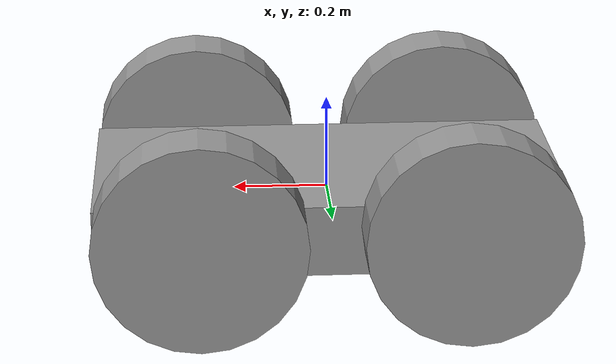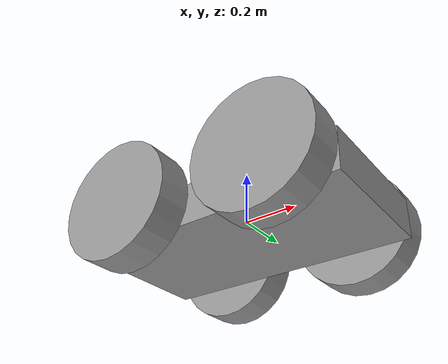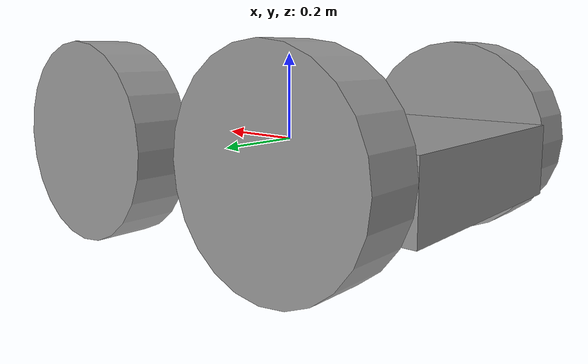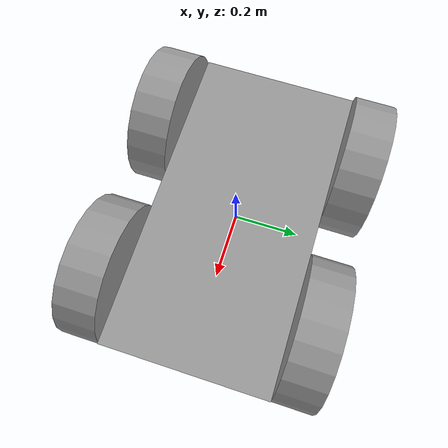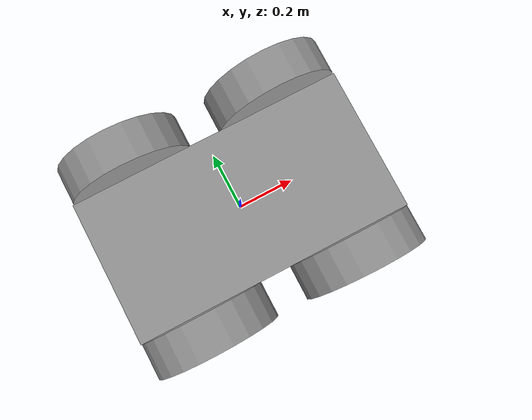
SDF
<?xml version='1.0'?>
<sdf version='1.6'>
  <model name='wheeled_robot'>
    <link name='link_0'>
      <pose frame=''>-0 -0 -0.025902 0 -0 0</pose>
      <inertial>
        <mass>0.0772446</mass>
        <inertia>
          <ixx>0.00185631</ixx>
          <ixy>0</ixy>
          <ixz>0</ixz>
          <iyy>0.00652801</iyy>
          <iyz>0</iyz>
          <izz>0.00809275</izz>
        </inertia>
        <pose frame=''>0 0 0 0 -0 0</pose>
      </inertial>
      <visual name='visual'>
        <pose frame=''>0 0 0 0 -0 0</pose>
        <geometry>
          <box>
            <size>0.995732 0.515491 0.150489</size>
          </box>
        </geometry>
        <material>
          <lighting>1</lighting>
          <script>
            <uri>file://media/materials/scripts/gazebo.material</uri>
            <name>Gazebo/Grey</name>
          </script>
          <shader type='pixel'/>
          <ambient>0.3 0.3 0.3 1</ambient>
          <diffuse>0.7 0.7 0.7 1</diffuse>
          <specular>0.01 0.01 0.01 1</specular>
          <emissive>0 0 0 1</emissive>
        </material>
        <transparency>0</transparency>
        <cast_shadows>1</cast_shadows>
      </visual>
      <collision name='collision'>
        <laser_retro>0</laser_retro>
        <max_contacts>10</max_contacts>
        <pose frame=''>0 0 0 0 -0 0</pose>
        <geometry>
          <box>
            <size>0.995732 0.515491 0.150489</size>
          </box>
        </geometry>
        <surface>
          <friction>
            <ode>
              <mu>1</mu>
              <mu2>1</mu2>
              <fdir1>0 0 0</fdir1>
              <slip1>0</slip1>
              <slip2>0</slip2>
            </ode>
            <torsional>
              <coefficient>1</coefficient>
              <patch_radius>0</patch_radius>
              <surface_radius>0</surface_radius>
              <use_patch_radius>1</use_patch_radius>
              <ode>
                <slip>0</slip>
              </ode>
            </torsional>
          </friction>
          <bounce>
            <restitution_coefficient>0</restitution_coefficient>
            <threshold>1e+06</threshold>
          </bounce>
          <contact>
            <collide_without_contact>0</collide_without_contact>
            <collide_without_contact_bitmask>1</collide_without_contact_bitmask>
            <collide_bitmask>1</collide_bitmask>
            <ode>
              <soft_cfm>0</soft_cfm>
              <soft_erp>0.2</soft_erp>
              <kp>1e+13</kp>
              <kd>1</kd>
              <max_vel>0.01</max_vel>
              <min_depth>0</min_depth>
            </ode>
            <bullet>
              <split_impulse>1</split_impulse>
              <split_impulse_penetration_threshold>-0.01</split_impulse_penetration_threshold>
              <soft_cfm>0</soft_cfm>
              <soft_erp>0.2</soft_erp>
              <kp>1e+13</kp>
              <kd>1</kd>
            </bullet>
          </contact>
        </surface>
      </collision>
    </link>
    <link name='link_1'>
      <pose frame=''>0.276969 -0.320255 0.006476 1.5708 -0 0</pose>
      <inertial>
        <mass>0.0244029</mass>
        <inertia>
          <ixx>0.00032947</ixx>
          <ixy>0</ixy>
          <ixz>0</ixz>
          <iyy>0.00032947</iyy>
          <iyz>0</iyz>
          <izz>0.00059538</izz>
        </inertia>
        <pose frame=''>0 0 0 0 -0 0</pose>
      </inertial>
      <gravity>1</gravity>
      <self_collide>0</self_collide>
      <kinematic>0</kinematic>
      <visual name='visual'>
        <pose frame=''>0 0 0 0 -0 0</pose>
        <geometry>
          <cylinder>
            <radius>0.220898</radius>
            <length>0.125017</length>
          </cylinder>
        </geometry>
        <material>
          <lighting>1</lighting>
          <script>
            <uri>file://media/materials/scripts/gazebo.material</uri>
            <name>Gazebo/Grey</name>
          </script>
          <shader type='pixel'>
            <normal_map>__default__</normal_map>
          </shader>
          <ambient>0.3 0.3 0.3 1</ambient>
          <diffuse>0.7 0.7 0.7 1</diffuse>
          <specular>0.01 0.01 0.01 1</specular>
          <emissive>0 0 0 1</emissive>
        </material>
        <transparency>0</transparency>
        <cast_shadows>1</cast_shadows>
      </visual>
      <collision name='collision'>
        <laser_retro>0</laser_retro>
        <max_contacts>10</max_contacts>
        <pose frame=''>0 0 0 0 -0 0</pose>
        <geometry>
          <cylinder>
            <radius>0.220898</radius>
            <length>0.125017</length>
          </cylinder>
        </geometry>
        <surface>
          <friction>
            <ode>
              <mu>1</mu>
              <mu2>1</mu2>
              <fdir1>0 0 0</fdir1>
              <slip1>0</slip1>
              <slip2>0</slip2>
            </ode>
            <torsional>
              <coefficient>1</coefficient>
              <patch_radius>0</patch_radius>
              <surface_radius>0</surface_radius>
              <use_patch_radius>1</use_patch_radius>
              <ode>
                <slip>0</slip>
              </ode>
            </torsional>
          </friction>
          <bounce>
            <restitution_coefficient>0</restitution_coefficient>
            <threshold>1e+06</threshold>
          </bounce>
          <contact>
            <collide_without_contact>0</collide_without_contact>
            <collide_without_contact_bitmask>1</collide_without_contact_bitmask>
            <collide_bitmask>1</collide_bitmask>
            <ode>
              <soft_cfm>0</soft_cfm>
              <soft_erp>0.2</soft_erp>
              <kp>1e+13</kp>
              <kd>1</kd>
              <max_vel>0.01</max_vel>
              <min_depth>0</min_depth>
            </ode>
            <bullet>
              <split_impulse>1</split_impulse>
              <split_impulse_penetration_threshold>-0.01</split_impulse_penetration_threshold>
              <soft_cfm>0</soft_cfm>
              <soft_erp>0.2</soft_erp>
              <kp>1e+13</kp>
              <kd>1</kd>
            </bullet>
          </contact>
        </surface>
      </collision>
    </link>
    <link name='link_1_clone'>
      <pose frame=''>-0.276969 -0.320255 0.006475 1.5708 -0 0</pose>
      <inertial>
        <mass>0.0244029</mass>
        <inertia>
          <ixx>0.00032947</ixx>
          <ixy>0</ixy>
          <ixz>0</ixz>
          <iyy>0.00032947</iyy>
          <iyz>0</iyz>
          <izz>0.00059538</izz>
        </inertia>
        <pose frame=''>0 0 0 0 -0 0</pose>
      </inertial>
      <self_collide>0</self_collide>
      <kinematic>0</kinematic>
      <visual name='visual'>
        <pose frame=''>0 0 0 0 -0 0</pose>
        <geometry>
          <cylinder>
            <radius>0.220898</radius>
            <length>0.125017</length>
          </cylinder>
        </geometry>
        <material>
          <lighting>1</lighting>
          <script>
            <uri>file://media/materials/scripts/gazebo.material</uri>
            <name>Gazebo/Grey</name>
          </script>
          <shader type='pixel'>
            <normal_map>__default__</normal_map>
          </shader>
          <ambient>0.3 0.3 0.3 1</ambient>
          <diffuse>0.7 0.7 0.7 1</diffuse>
          <specular>0.01 0.01 0.01 1</specular>
          <emissive>0 0 0 1</emissive>
        </material>
        <transparency>0</transparency>
        <cast_shadows>1</cast_shadows>
      </visual>
      <collision name='collision'>
        <laser_retro>0</laser_retro>
        <max_contacts>10</max_contacts>
        <pose frame=''>0 0 0 0 -0 0</pose>
        <geometry>
          <cylinder>
            <radius>0.220898</radius>
            <length>0.125017</length>
          </cylinder>
        </geometry>
        <surface>
          <friction>
            <ode>
              <mu>1</mu>
              <mu2>1</mu2>
              <fdir1>0 0 0</fdir1>
              <slip1>0</slip1>
              <slip2>0</slip2>
            </ode>
            <torsional>
              <coefficient>1</coefficient>
              <patch_radius>0</patch_radius>
              <surface_radius>0</surface_radius>
              <use_patch_radius>1</use_patch_radius>
              <ode>
                <slip>0</slip>
              </ode>
            </torsional>
          </friction>
          <bounce>
            <restitution_coefficient>0</restitution_coefficient>
            <threshold>1e+06</threshold>
          </bounce>
          <contact>
            <collide_without_contact>0</collide_without_contact>
            <collide_without_contact_bitmask>1</collide_without_contact_bitmask>
            <collide_bitmask>1</collide_bitmask>
            <ode>
              <soft_cfm>0</soft_cfm>
              <soft_erp>0.2</soft_erp>
              <kp>1e+13</kp>
              <kd>1</kd>
              <max_vel>0.01</max_vel>
              <min_depth>0</min_depth>
            </ode>
            <bullet>
              <split_impulse>1</split_impulse>
              <split_impulse_penetration_threshold>-0.01</split_impulse_penetration_threshold>
              <soft_cfm>0</soft_cfm>
              <soft_erp>0.2</soft_erp>
              <kp>1e+13</kp>
              <kd>1</kd>
            </bullet>
          </contact>
        </surface>
      </collision>
    </link>
    <link name='link_1_clone_0'>
      <pose frame=''>0.276969 0.320255 0.006476 1.5708 -0 0</pose>
      <inertial>
        <mass>0.0244029</mass>
        <inertia>
          <ixx>0.00032947</ixx>
          <ixy>0</ixy>
          <ixz>0</ixz>
          <iyy>0.00032947</iyy>
          <iyz>0</iyz>
          <izz>0.00059538</izz>
        </inertia>
        <pose frame=''>0 0 0 0 -0 0</pose>
      </inertial>
      <self_collide>0</self_collide>
      <kinematic>0</kinematic>
      <visual name='visual'>
        <pose frame=''>0 0 0 0 -0 0</pose>
        <geometry>
          <cylinder>
            <radius>0.220898</radius>
            <length>0.125017</length>
          </cylinder>
        </geometry>
        <material>
          <lighting>1</lighting>
          <script>
            <uri>file://media/materials/scripts/gazebo.material</uri>
            <name>Gazebo/Grey</name>
          </script>
          <shader type='pixel'>
            <normal_map>__default__</normal_map>
          </shader>
          <ambient>0.3 0.3 0.3 1</ambient>
          <diffuse>0.7 0.7 0.7 1</diffuse>
          <specular>0.01 0.01 0.01 1</specular>
          <emissive>0 0 0 1</emissive>
        </material>
        <transparency>0</transparency>
        <cast_shadows>1</cast_shadows>
      </visual>
      <collision name='collision'>
        <laser_retro>0</laser_retro>
        <max_contacts>10</max_contacts>
        <pose frame=''>0 0 0 0 -0 0</pose>
        <geometry>
          <cylinder>
            <radius>0.220898</radius>
            <length>0.125017</length>
          </cylinder>
        </geometry>
        <surface>
          <friction>
            <ode>
              <mu>1</mu>
              <mu2>1</mu2>
              <fdir1>0 0 0</fdir1>
              <slip1>0</slip1>
              <slip2>0</slip2>
            </ode>
            <torsional>
              <coefficient>1</coefficient>
              <patch_radius>0</patch_radius>
              <surface_radius>0</surface_radius>
              <use_patch_radius>1</use_patch_radius>
              <ode>
                <slip>0</slip>
              </ode>
            </torsional>
          </friction>
          <bounce>
            <restitution_coefficient>0</restitution_coefficient>
            <threshold>1e+06</threshold>
          </bounce>
          <contact>
            <collide_without_contact>0</collide_without_contact>
            <collide_without_contact_bitmask>1</collide_without_contact_bitmask>
            <collide_bitmask>1</collide_bitmask>
            <ode>
              <soft_cfm>0</soft_cfm>
              <soft_erp>0.2</soft_erp>
              <kp>1e+13</kp>
              <kd>1</kd>
              <max_vel>0.01</max_vel>
              <min_depth>0</min_depth>
            </ode>
            <bullet>
              <split_impulse>1</split_impulse>
              <split_impulse_penetration_threshold>-0.01</split_impulse_penetration_threshold>
              <soft_cfm>0</soft_cfm>
              <soft_erp>0.2</soft_erp>
              <kp>1e+13</kp>
              <kd>1</kd>
            </bullet>
          </contact>
        </surface>
      </collision>
    </link>
    <link name='link_1_clone_1'>
      <pose frame=''>-0.276969 0.320255 0.006476 1.5708 -0 0</pose>
      <inertial>
        <mass>0.0244029</mass>
        <inertia>
          <ixx>0.00032947</ixx>
          <ixy>0</ixy>
          <ixz>0</ixz>
          <iyy>0.00032947</iyy>
          <iyz>0</iyz>
          <izz>0.00059538</izz>
        </inertia>
        <pose frame=''>0 0 0 0 -0 0</pose>
      </inertial>
      <self_collide>0</self_collide>
      <kinematic>0</kinematic>
      <visual name='visual'>
        <pose frame=''>0 0 0 0 -0 0</pose>
        <geometry>
          <cylinder>
            <radius>0.220898</radius>
            <length>0.125017</length>
          </cylinder>
        </geometry>
        <material>
          <lighting>1</lighting>
          <script>
            <uri>file://media/materials/scripts/gazebo.material</uri>
            <name>Gazebo/Grey</name>
          </script>
          <shader type='pixel'>
            <normal_map>__default__</normal_map>
          </shader>
          <ambient>0.3 0.3 0.3 1</ambient>
          <diffuse>0.7 0.7 0.7 1</diffuse>
          <specular>0.01 0.01 0.01 1</specular>
          <emissive>0 0 0 1</emissive>
        </material>
        <transparency>0</transparency>
        <cast_shadows>1</cast_shadows>
      </visual>
      <collision name='collision'>
        <laser_retro>0</laser_retro>
        <max_contacts>10</max_contacts>
        <pose frame=''>0 0 0 0 -0 0</pose>
        <geometry>
          <cylinder>
            <radius>0.220898</radius>
            <length>0.125017</length>
          </cylinder>
        </geometry>
        <surface>
          <friction>
            <ode>
              <mu>1</mu>
              <mu2>1</mu2>
              <fdir1>0 0 0</fdir1>
              <slip1>0</slip1>
              <slip2>0</slip2>
            </ode>
            <torsional>
              <coefficient>1</coefficient>
              <patch_radius>0</patch_radius>
              <surface_radius>0</surface_radius>
              <use_patch_radius>1</use_patch_radius>
              <ode>
                <slip>0</slip>
              </ode>
            </torsional>
          </friction>
          <bounce>
            <restitution_coefficient>0</restitution_coefficient>
            <threshold>1e+06</threshold>
          </bounce>
          <contact>
            <collide_without_contact>0</collide_without_contact>
            <collide_without_contact_bitmask>1</collide_without_contact_bitmask>
            <collide_bitmask>1</collide_bitmask>
            <ode>
              <soft_cfm>0</soft_cfm>
              <soft_erp>0.2</soft_erp>
              <kp>1e+13</kp>
              <kd>1</kd>
              <max_vel>0.01</max_vel>
              <min_depth>0</min_depth>
            </ode>
            <bullet>
              <split_impulse>1</split_impulse>
              <split_impulse_penetration_threshold>-0.01</split_impulse_penetration_threshold>
              <soft_cfm>0</soft_cfm>
              <soft_erp>0.2</soft_erp>
              <kp>1e+13</kp>
              <kd>1</kd>
            </bullet>
          </contact>
        </surface>
      </collision>
    </link>
    <joint name='link_0_JOINT_0' type='revolute'>
      <parent>link_0</parent>
      <child>link_1</child>
      <pose frame=''>0 0 0 0 -0 0</pose>
      <axis>
        <xyz>0 0 1</xyz>
        <use_parent_model_frame>0</use_parent_model_frame>
        <limit>
          <lower>-1.79769e+308</lower>
          <upper>1.79769e+308</upper>
          <effort>-1</effort>
          <velocity>-1</velocity>
        </limit>
        <dynamics>
          <spring_reference>0</spring_reference>
          <spring_stiffness>0</spring_stiffness>
          <damping>0</damping>
        </dynamics>
      </axis>
      <physics>
        <ode>
          <limit>
            <cfm>0</cfm>
            <erp>0.2</erp>
          </limit>
          <suspension>
            <cfm>0</cfm>
            <erp>0.2</erp>
          </suspension>
        </ode>
      </physics>
    </joint>
    <joint name='link_0_JOINT_1' type='revolute'>
      <parent>link_0</parent>
      <child>link_1_clone</child>
      <pose frame=''>0 0 0 0 -0 0</pose>
      <axis>
        <xyz>0 0 1</xyz>
        <use_parent_model_frame>0</use_parent_model_frame>
        <limit>
          <lower>-1.79769e+308</lower>
          <upper>1.79769e+308</upper>
          <effort>-1</effort>
          <velocity>-1</velocity>
        </limit>
        <dynamics>
          <spring_reference>0</spring_reference>
          <spring_stiffness>0</spring_stiffness>
          <damping>0</damping>
        </dynamics>
      </axis>
      <physics>
        <ode>
          <limit>
            <cfm>0</cfm>
            <erp>0.2</erp>
          </limit>
          <suspension>
            <cfm>0</cfm>
            <erp>0.2</erp>
          </suspension>
        </ode>
      </physics>
    </joint>
    <joint name='link_0_JOINT_2' type='revolute'>
      <parent>link_0</parent>
      <child>link_1_clone_0</child>
      <pose frame=''>0 0 0 0 -0 0</pose>
      <axis>
        <xyz>0 0 1</xyz>
        <use_parent_model_frame>0</use_parent_model_frame>
        <limit>
          <lower>-1.79769e+308</lower>
          <upper>1.79769e+308</upper>
          <effort>-1</effort>
          <velocity>-1</velocity>
        </limit>
        <dynamics>
          <spring_reference>0</spring_reference>
          <spring_stiffness>0</spring_stiffness>
          <damping>0</damping>
        </dynamics>
      </axis>
      <physics>
        <ode>
          <limit>
            <cfm>0</cfm>
            <erp>0.2</erp>
          </limit>
          <suspension>
            <cfm>0</cfm>
            <erp>0.2</erp>
          </suspension>
        </ode>
      </physics>
    </joint>
    <joint name='link_0_JOINT_3' type='revolute'>
      <parent>link_0</parent>
      <child>link_1_clone_1</child>
      <pose frame=''>0 0 0 0 -0 0</pose>
      <axis>
        <xyz>0 0 1</xyz>
        <use_parent_model_frame>0</use_parent_model_frame>
        <limit>
          <lower>-1.79769e+308</lower>
          <upper>1.79769e+308</upper>
          <effort>-1</effort>
          <velocity>-1</velocity>
        </limit>
        <dynamics>
          <spring_reference>0</spring_reference>
          <spring_stiffness>0</spring_stiffness>
          <damping>0</damping>
        </dynamics>
      </axis>
      <physics>
        <ode>
          <limit>
            <cfm>0</cfm>
            <erp>0.2</erp>
          </limit>
          <suspension>
            <cfm>0</cfm>
            <erp>0.2</erp>
          </suspension>
        </ode>
      </physics>
    </joint>
    <static>0</static>
    <allow_auto_disable>1</allow_auto_disable>
  </model>
</sdf>
